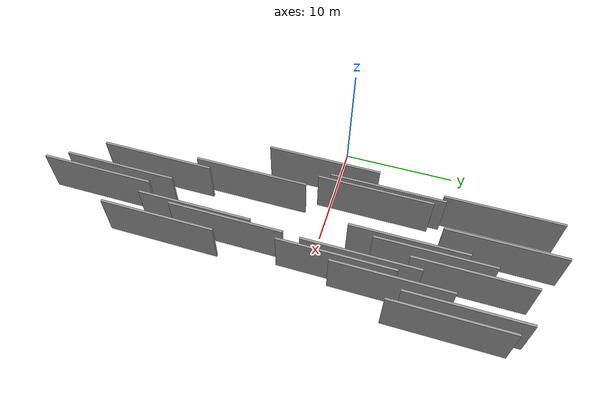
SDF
<sdf version="1.6">
 <world name="default">
  <scene>
   <sky><clouds><speed>12</speed></clouds></sky>
   <ambient>0.4 0.4 0.4 1</ambient>
   <background>0.7 0.7 0.7 1</background>
   <shadows>1</shadows>
  </scene>
  <gravity>0 0 -9.8066</gravity>
  <magnetic_field>6e-06 2.3e-05 -4.2e-05</magnetic_field>
  <physics default="0" name="default_physics" type="ode">
   <ode>
    <solver>
     <type>quick</type>
     <iters>10</iters>
     <sor>1.0</sor>
     <use_dynamic_moi_rescaling>0</use_dynamic_moi_rescaling>
    </solver>
    <constraints>
     <cfm>0</cfm>
     <erp>0.2</erp>
     <contact_max_correcting_vel>100</contact_max_correcting_vel>
     <contact_surface_layer>0.001</contact_surface_layer>
    </constraints>
   </ode>
   <max_step_size>0.004</max_step_size>
   <real_time_factor>1</real_time_factor>
   <real_time_update_rate>250</real_time_update_rate>
  </physics>
  <light name="sun" type="directional">
   <pose>0 0 10 0 0 0</pose>
   <diffuse>0.8 0.8 0.8 1</diffuse>
   <specular>0.2 0.2 0.2 1</specular>
   <attenuation>
    <range>1000</range>
    <constant>0.9</constant>
    <linear>0.01</linear>
    <quadratic>0.001</quadratic>
   </attenuation>
   <direction>-0.5 0.1 -0.9</direction>
  </light>
  <model name="grey_wall_1">
   <static>1</static>
   <pose>10.3360 -18.1644 0.0 0.000000 0.000000 1.570796</pose>
   <link name="link">
    <pose>0 0 2.00 0 0 0</pose>
    <collision name="collision"><geometry><box><size>10.00 0.2 4.00</size></box></geometry></collision>
    <visual name="visual">
     <cast_shadows>0</cast_shadows>
     <geometry><box><size>10.00 0.2 4.00</size></box></geometry>
     <material>
      <script>
       <uri>model://grey_wall/materials/scripts</uri>
       <uri>model://grey_wall/materials/textures</uri>
       <name>vrc/grey_wall</name>
      </script>
     </material>
    </visual>
   </link>
  </model>
  <model name="grey_wall_2">
   <static>1</static>
   <pose>4.4183 -1.2426 0.0 0.000000 0.000000 1.570796</pose>
   <link name="link">
    <pose>0 0 2.00 0 0 0</pose>
    <collision name="collision"><geometry><box><size>10.00 0.2 4.00</size></box></geometry></collision>
    <visual name="visual">
     <cast_shadows>0</cast_shadows>
     <geometry><box><size>10.00 0.2 4.00</size></box></geometry>
     <material>
      <script>
       <uri>model://grey_wall/materials/scripts</uri>
       <uri>model://grey_wall/materials/textures</uri>
       <name>vrc/grey_wall</name>
      </script>
     </material>
    </visual>
   </link>
  </model>
  <model name="grey_wall_3">
   <static>1</static>
   <pose>12.9490 4.0539 0.0 0.000000 0.000000 1.570796</pose>
   <link name="link">
    <pose>0 0 2.00 0 0 0</pose>
    <collision name="collision"><geometry><box><size>10.00 0.2 4.00</size></box></geometry></collision>
    <visual name="visual">
     <cast_shadows>0</cast_shadows>
     <geometry><box><size>10.00 0.2 4.00</size></box></geometry>
     <material>
      <script>
       <uri>model://grey_wall/materials/scripts</uri>
       <uri>model://grey_wall/materials/textures</uri>
       <name>vrc/grey_wall</name>
      </script>
     </material>
    </visual>
   </link>
  </model>
  <model name="grey_wall_4">
   <static>1</static>
   <pose>5.8688 4.7515 0.0 0.000000 0.000000 1.570796</pose>
   <link name="link">
    <pose>0 0 2.00 0 0 0</pose>
    <collision name="collision"><geometry><box><size>10.00 0.2 4.00</size></box></geometry></collision>
    <visual name="visual">
     <cast_shadows>0</cast_shadows>
     <geometry><box><size>10.00 0.2 4.00</size></box></geometry>
     <material>
      <script>
       <uri>model://grey_wall/materials/scripts</uri>
       <uri>model://grey_wall/materials/textures</uri>
       <name>vrc/grey_wall</name>
      </script>
     </material>
    </visual>
   </link>
  </model>
  <model name="grey_wall_5">
   <static>1</static>
   <pose>12.7881 -7.4069 0.0 0.000000 0.000000 1.570796</pose>
   <link name="link">
    <pose>0 0 2.00 0 0 0</pose>
    <collision name="collision"><geometry><box><size>10.00 0.2 4.00</size></box></geometry></collision>
    <visual name="visual">
     <cast_shadows>0</cast_shadows>
     <geometry><box><size>10.00 0.2 4.00</size></box></geometry>
     <material>
      <script>
       <uri>model://grey_wall/materials/scripts</uri>
       <uri>model://grey_wall/materials/textures</uri>
       <name>vrc/grey_wall</name>
      </script>
     </material>
    </visual>
   </link>
  </model>
  <model name="grey_wall_6">
   <static>1</static>
   <pose>14.2670 -12.8791 0.0 0.000000 0.000000 1.570796</pose>
   <link name="link">
    <pose>0 0 2.00 0 0 0</pose>
    <collision name="collision"><geometry><box><size>10.00 0.2 4.00</size></box></geometry></collision>
    <visual name="visual">
     <cast_shadows>0</cast_shadows>
     <geometry><box><size>10.00 0.2 4.00</size></box></geometry>
     <material>
      <script>
       <uri>model://grey_wall/materials/scripts</uri>
       <uri>model://grey_wall/materials/textures</uri>
       <name>vrc/grey_wall</name>
      </script>
     </material>
    </visual>
   </link>
  </model>
  <model name="grey_wall_7">
   <static>1</static>
   <pose>6.3783 3.7892 0.0 0.000000 0.000000 1.570796</pose>
   <link name="link">
    <pose>0 0 2.00 0 0 0</pose>
    <collision name="collision"><geometry><box><size>10.00 0.2 4.00</size></box></geometry></collision>
    <visual name="visual">
     <cast_shadows>0</cast_shadows>
     <geometry><box><size>10.00 0.2 4.00</size></box></geometry>
     <material>
      <script>
       <uri>model://grey_wall/materials/scripts</uri>
       <uri>model://grey_wall/materials/textures</uri>
       <name>vrc/grey_wall</name>
      </script>
     </material>
    </visual>
   </link>
  </model>
  <model name="grey_wall_8">
   <static>1</static>
   <pose>15.1553 12.7467 0.0 0.000000 0.000000 1.570796</pose>
   <link name="link">
    <pose>0 0 2.00 0 0 0</pose>
    <collision name="collision"><geometry><box><size>10.00 0.2 4.00</size></box></geometry></collision>
    <visual name="visual">
     <cast_shadows>0</cast_shadows>
     <geometry><box><size>10.00 0.2 4.00</size></box></geometry>
     <material>
      <script>
       <uri>model://grey_wall/materials/scripts</uri>
       <uri>model://grey_wall/materials/textures</uri>
       <name>vrc/grey_wall</name>
      </script>
     </material>
    </visual>
   </link>
  </model>
  <model name="grey_wall_9">
   <static>1</static>
   <pose>11.2612 -19.9085 0.0 0.000000 0.000000 1.570796</pose>
   <link name="link">
    <pose>0 0 2.00 0 0 0</pose>
    <collision name="collision"><geometry><box><size>10.00 0.2 4.00</size></box></geometry></collision>
    <visual name="visual">
     <cast_shadows>0</cast_shadows>
     <geometry><box><size>10.00 0.2 4.00</size></box></geometry>
     <material>
      <script>
       <uri>model://grey_wall/materials/scripts</uri>
       <uri>model://grey_wall/materials/textures</uri>
       <name>vrc/grey_wall</name>
      </script>
     </material>
    </visual>
   </link>
  </model>
  <model name="grey_wall_10">
   <static>1</static>
   <pose>16.2234 11.6991 0.0 0.000000 0.000000 1.570796</pose>
   <link name="link">
    <pose>0 0 2.00 0 0 0</pose>
    <collision name="collision"><geometry><box><size>10.00 0.2 4.00</size></box></geometry></collision>
    <visual name="visual">
     <cast_shadows>0</cast_shadows>
     <geometry><box><size>10.00 0.2 4.00</size></box></geometry>
     <material>
      <script>
       <uri>model://grey_wall/materials/scripts</uri>
       <uri>model://grey_wall/materials/textures</uri>
       <name>vrc/grey_wall</name>
      </script>
     </material>
    </visual>
   </link>
  </model>
  <model name="grey_wall_11">
   <static>1</static>
   <pose>8.5906 14.9380 0.0 0.000000 0.000000 1.570796</pose>
   <link name="link">
    <pose>0 0 2.00 0 0 0</pose>
    <collision name="collision"><geometry><box><size>10.00 0.2 4.00</size></box></geometry></collision>
    <visual name="visual">
     <cast_shadows>0</cast_shadows>
     <geometry><box><size>10.00 0.2 4.00</size></box></geometry>
     <material>
      <script>
       <uri>model://grey_wall/materials/scripts</uri>
       <uri>model://grey_wall/materials/textures</uri>
       <name>vrc/grey_wall</name>
      </script>
     </material>
    </visual>
   </link>
  </model>
  <model name="grey_wall_12">
   <static>1</static>
   <pose>12.4415 -10.3054 0.0 0.000000 0.000000 1.570796</pose>
   <link name="link">
    <pose>0 0 2.00 0 0 0</pose>
    <collision name="collision"><geometry><box><size>10.00 0.2 4.00</size></box></geometry></collision>
    <visual name="visual">
     <cast_shadows>0</cast_shadows>
     <geometry><box><size>10.00 0.2 4.00</size></box></geometry>
     <material>
      <script>
       <uri>model://grey_wall/materials/scripts</uri>
       <uri>model://grey_wall/materials/textures</uri>
       <name>vrc/grey_wall</name>
      </script>
     </material>
    </visual>
   </link>
  </model>
  <model name="grey_wall_13">
   <static>1</static>
   <pose>5.3582 14.4450 0.0 0.000000 0.000000 1.570796</pose>
   <link name="link">
    <pose>0 0 2.00 0 0 0</pose>
    <collision name="collision"><geometry><box><size>10.00 0.2 4.00</size></box></geometry></collision>
    <visual name="visual">
     <cast_shadows>0</cast_shadows>
     <geometry><box><size>10.00 0.2 4.00</size></box></geometry>
     <material>
      <script>
       <uri>model://grey_wall/materials/scripts</uri>
       <uri>model://grey_wall/materials/textures</uri>
       <name>vrc/grey_wall</name>
      </script>
     </material>
    </visual>
   </link>
  </model>
  <model name="grey_wall_14">
   <static>1</static>
   <pose>7.5730 -6.9939 0.0 0.000000 0.000000 1.570796</pose>
   <link name="link">
    <pose>0 0 2.00 0 0 0</pose>
    <collision name="collision"><geometry><box><size>10.00 0.2 4.00</size></box></geometry></collision>
    <visual name="visual">
     <cast_shadows>0</cast_shadows>
     <geometry><box><size>10.00 0.2 4.00</size></box></geometry>
     <material>
      <script>
       <uri>model://grey_wall/materials/scripts</uri>
       <uri>model://grey_wall/materials/textures</uri>
       <name>vrc/grey_wall</name>
      </script>
     </material>
    </visual>
   </link>
  </model>
  <model name="grey_wall_15">
   <static>1</static>
   <pose>12.0064 12.8541 0.0 0.000000 0.000000 1.570796</pose>
   <link name="link">
    <pose>0 0 2.00 0 0 0</pose>
    <collision name="collision"><geometry><box><size>10.00 0.2 4.00</size></box></geometry></collision>
    <visual name="visual">
     <cast_shadows>0</cast_shadows>
     <geometry><box><size>10.00 0.2 4.00</size></box></geometry>
     <material>
      <script>
       <uri>model://grey_wall/materials/scripts</uri>
       <uri>model://grey_wall/materials/textures</uri>
       <name>vrc/grey_wall</name>
      </script>
     </material>
    </visual>
   </link>
  </model>
  <model name="grey_wall_16">
   <static>1</static>
   <pose>8.2997 -15.5240 0.0 0.000000 0.000000 1.570796</pose>
   <link name="link">
    <pose>0 0 2.00 0 0 0</pose>
    <collision name="collision"><geometry><box><size>10.00 0.2 4.00</size></box></geometry></collision>
    <visual name="visual">
     <cast_shadows>0</cast_shadows>
     <geometry><box><size>10.00 0.2 4.00</size></box></geometry>
     <material>
      <script>
       <uri>model://grey_wall/materials/scripts</uri>
       <uri>model://grey_wall/materials/textures</uri>
       <name>vrc/grey_wall</name>
      </script>
     </material>
    </visual>
   </link>
  </model>
  <model name="grey_wall_17">
   <static>1</static>
   <pose>11.0501 9.6455 0.0 0.000000 0.000000 1.570796</pose>
   <link name="link">
    <pose>0 0 2.00 0 0 0</pose>
    <collision name="collision"><geometry><box><size>10.00 0.2 4.00</size></box></geometry></collision>
    <visual name="visual">
     <cast_shadows>0</cast_shadows>
     <geometry><box><size>10.00 0.2 4.00</size></box></geometry>
     <material>
      <script>
       <uri>model://grey_wall/materials/scripts</uri>
       <uri>model://grey_wall/materials/textures</uri>
       <name>vrc/grey_wall</name>
      </script>
     </material>
    </visual>
   </link>
  </model>
  <model name="grey_wall_18">
   <static>1</static>
   <pose>13.5514 2.2035 0.0 0.000000 0.000000 1.570796</pose>
   <link name="link">
    <pose>0 0 2.00 0 0 0</pose>
    <collision name="collision"><geometry><box><size>10.00 0.2 4.00</size></box></geometry></collision>
    <visual name="visual">
     <cast_shadows>0</cast_shadows>
     <geometry><box><size>10.00 0.2 4.00</size></box></geometry>
     <material>
      <script>
       <uri>model://grey_wall/materials/scripts</uri>
       <uri>model://grey_wall/materials/textures</uri>
       <name>vrc/grey_wall</name>
      </script>
     </material>
    </visual>
   </link>
  </model>
  <model name="grey_wall_19">
   <static>1</static>
   <pose>14.2128 6.8138 0.0 0.000000 0.000000 1.570796</pose>
   <link name="link">
    <pose>0 0 2.00 0 0 0</pose>
    <collision name="collision"><geometry><box><size>10.00 0.2 4.00</size></box></geometry></collision>
    <visual name="visual">
     <cast_shadows>0</cast_shadows>
     <geometry><box><size>10.00 0.2 4.00</size></box></geometry>
     <material>
      <script>
       <uri>model://grey_wall/materials/scripts</uri>
       <uri>model://grey_wall/materials/textures</uri>
       <name>vrc/grey_wall</name>
      </script>
     </material>
    </visual>
   </link>
  </model>
  <model name="grey_wall_20">
   <static>1</static>
   <pose>10.4915 7.4370 0.0 0.000000 0.000000 1.570796</pose>
   <link name="link">
    <pose>0 0 2.00 0 0 0</pose>
    <collision name="collision"><geometry><box><size>10.00 0.2 4.00</size></box></geometry></collision>
    <visual name="visual">
     <cast_shadows>0</cast_shadows>
     <geometry><box><size>10.00 0.2 4.00</size></box></geometry>
     <material>
      <script>
       <uri>model://grey_wall/materials/scripts</uri>
       <uri>model://grey_wall/materials/textures</uri>
       <name>vrc/grey_wall</name>
      </script>
     </material>
    </visual>
   </link>
  </model>
 </world>
</sdf>
